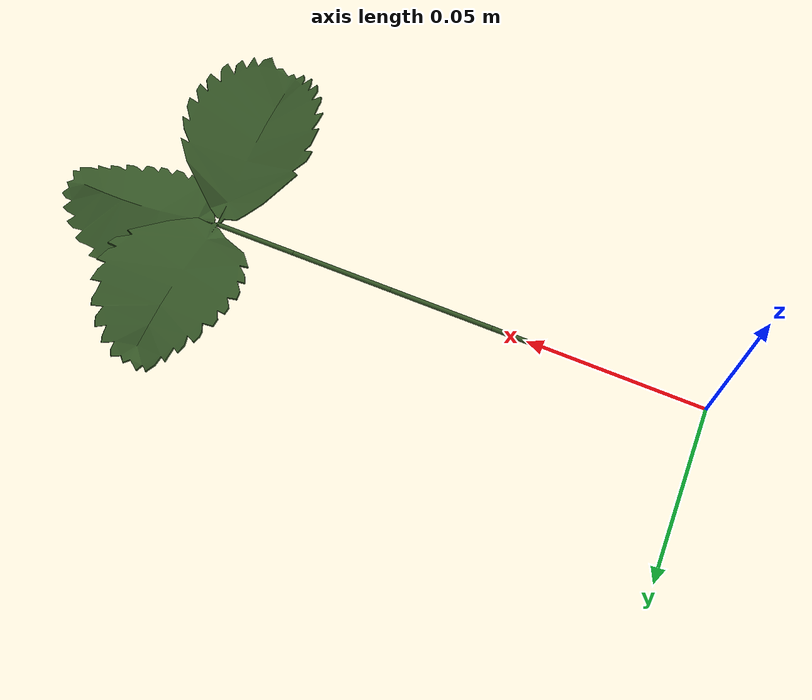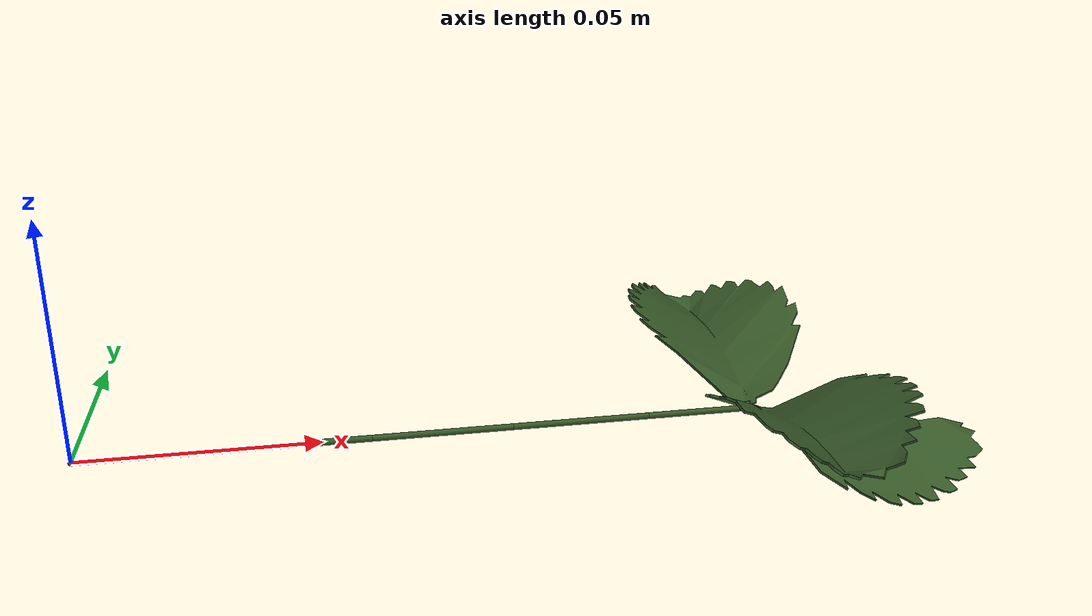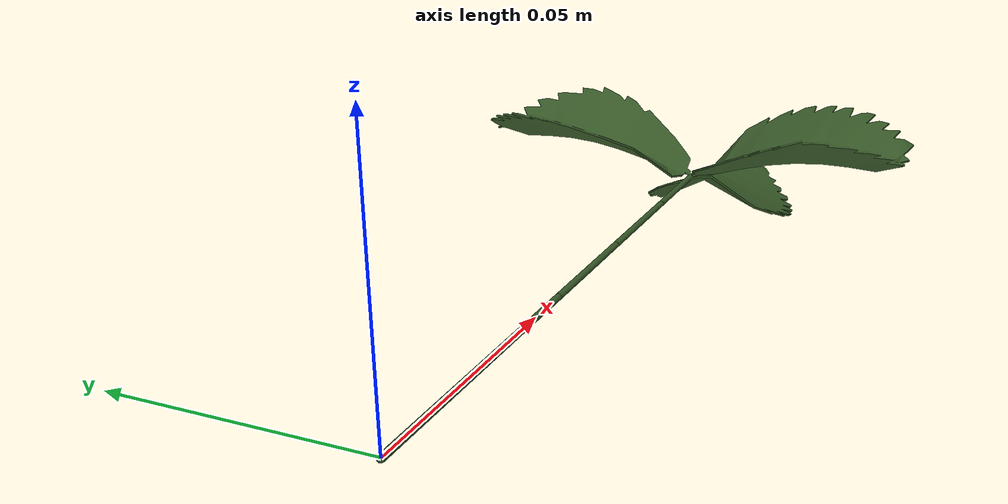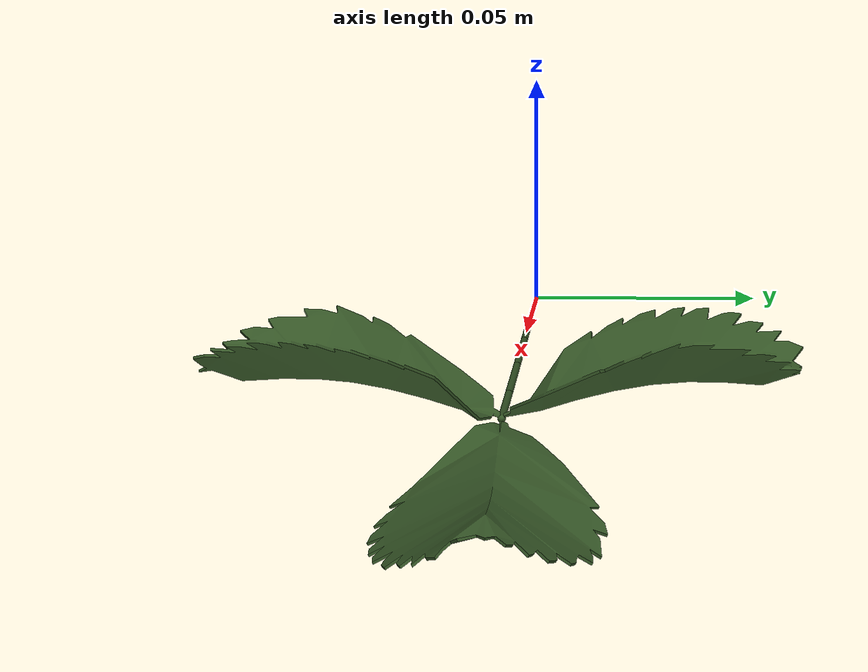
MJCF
<mujoco model="strawb_vine">
  <compiler angle="radian" meshdir="assets"/>

  <default>
    <default class="vine">
      <joint type="ball" stiffness="0.02" armature="0.0001" damping="0.01" actuatorfrclimited="false"/>
      <geom  type="capsule" size="0.0007" mass="0.0001"
             solref="0.001 1" solimp="0.97 0.995 0.0005 0.5 2"
             rgba="0.208 0.337 0.149 1"/>
    </default>
  </default>

  <asset>
    <!-- Leaf mesh only; color via geom rgba -->
    <mesh name="leaf" file="leaf_1.obj" scale="0.4 0.4 0.4"/>
    <texture name="leaves_g2"   type="2d" file="textures/leaf_g2.png"/>
    <material name="leaves_g2" texture="leaves_g2" shininess="0.1" specular="0.1" reflectance="0.5" texuniform="true"/>
  </asset>

  <worldbody>
    <!-- root at origin; rotate/place when attaching in the parent scene -->
    <body name="vine_root">
      <joint class="vine" name="J_0"/>

      <!-- straight vine of 4 capsules -->
      <body name="seg_first">
        <geom class="vine" name="seg0" fromto="0 0 0  0.03 0 0"/>
        <site name="seg_first" pos="0 0 0" group="3"/>
        <body name="seg_1" pos="0.03 0 0">
          <joint class="vine" name="j1"/>
          <geom  class="vine" name="seg1" fromto="0 0 0  0.03 0 0"/>
          <body name="seg_2" pos="0.03 0 0">
            <joint class="vine" name="j2"/>
            <geom  class="vine" name="seg2" fromto="0 0 0  0.03 0 0"/>
            <body name="seg_last" pos="0.03 0 0">
              <joint class="vine" name="j_last"/>
              <geom  class="vine" name="seg3" fromto="0 0 0  0.03 0 0"/>
              <site  name="seg_last" pos="0.03 0 0" group="3"/>
              <!-- petiole (capsule) and hub with 3 leaves -->
              <body name="petiole" pos="0.03 0 0">
                <geom class="vine" name="petiole_caps" fromto="0 0 0  0.024 0 0"/>
                <site name="petiole_site" pos="0.024 0 0" size="0.0012" rgba="0 0 1 1" group="3"/>
                <body name="hub" pos="0.024 0 0" euler="0 0 1.57">
                  <!-- Leaf A (+X) -->
                  <body name="leafA_body" pos="0.0 0 0">
                    <joint name="leafA_joint" type="ball" damping="0.0005" armature="0.0001" stiffness="0.01"/>
                    <geom  name="leaf_A" type="mesh" mesh="leaf" mass="0.002" rgba="0.208 0.337 0.149 1" material="leaves_g2"/>
                  </body>
                  <!-- Leaf B (+Y), roll 180°, yaw +90° -->
                  <body name="leafB_body" pos="0 0.0 0" euler="3.1415926 0 1.5707963">
                    <joint name="leafB_joint" type="ball" damping="0.0005" armature="0.0001" stiffness="0.01"/>
                    <geom  name="leaf_B" type="mesh" mesh="leaf" mass="0.002" rgba="0.208 0.337 0.149 1" material="leaves_g2"/>
                  </body>
                  <!-- Leaf C (−X), yaw 180° -->
                  <body name="leafC_body" pos="-0.00 0 0" euler="0 0 3.1415926">
                    <joint name="leafC_joint" type="ball" damping="0.0005" armature="0.0001" stiffness="0.01"/>
                    <geom  name="leaf_C" type="mesh" mesh="leaf" mass="0.002" rgba="0.208 0.337 0.149 1" material="leaves_g2"/>
                  </body>
                </body>
              </body>
            </body>
          </body>
        </body>
      </body>
      <!-- end chain -->

    </body>
  </worldbody>
</mujoco>
